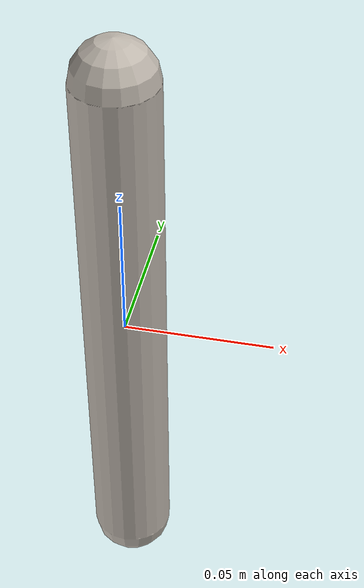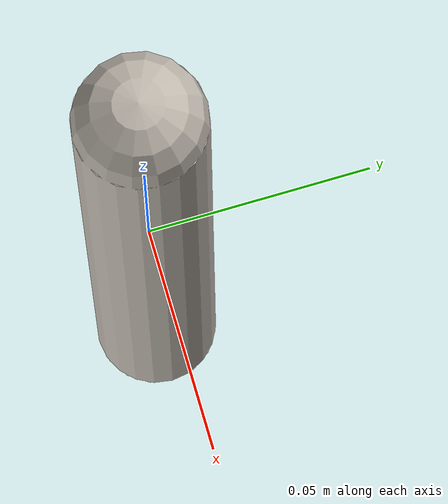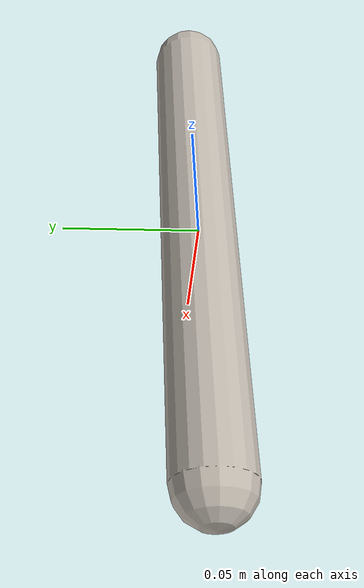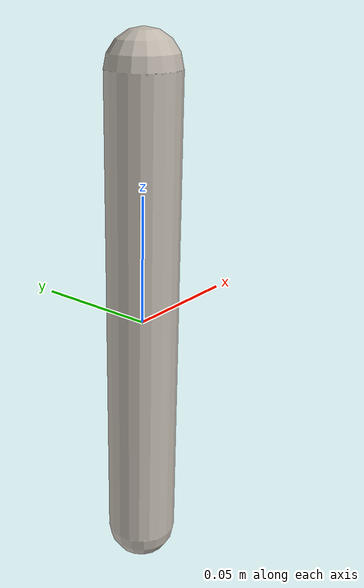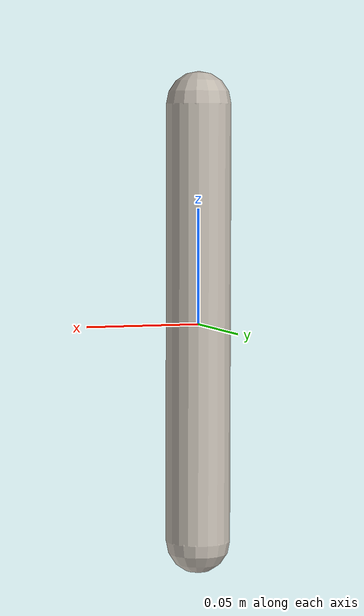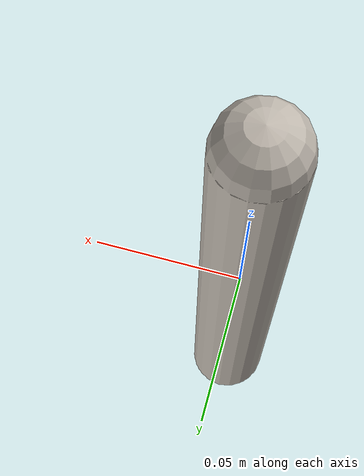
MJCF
<?xml version='1.0' encoding='utf8'?>
<mujoco model="vla82_vla82_003">
  <compiler angle="radian" />
  <asset>
    <texture name="source_texture" type="2d" file="source_texture.png" />
    <material name="source_material" texture="source_texture" rgba="1 1 1 1" />
  </asset>
  <default>
    <default class="visual"><geom contype="0" conaffinity="0" group="1" /></default>
    <default class="collision"><geom contype="1" conaffinity="1" group="0" density="300" friction="0.95 0.3 0.1" /></default>
    <default class="region"><geom contype="0" conaffinity="0" group="1" rgba="0 1 0 0" mass="0" /></default>
  </default>
  <worldbody><body><body name="object">
    <geom name="visual" class="visual" type="capsule" fromto="0 0 -0.095000 0 0 0.095000" size="0.014000" material="source_material" />
    <geom name="collision" class="collision" type="capsule" fromto="0 0 -0.095000 0 0 0.095000" size="0.014000" />
    <geom name="reg_bbox" class="region" type="box" pos="0 0 0" size="0.014000 0.014000 0.095000" />
  </body></body></worldbody>
  <actuator />
</mujoco>
